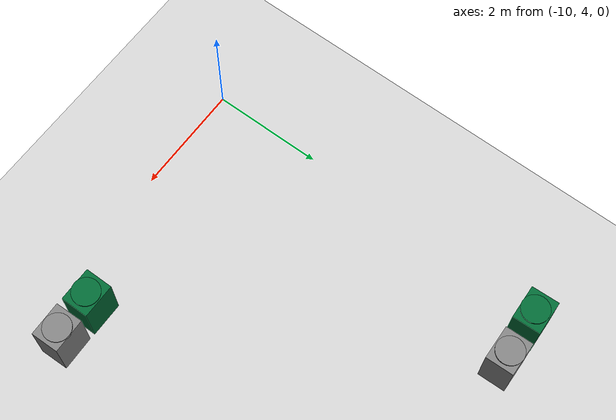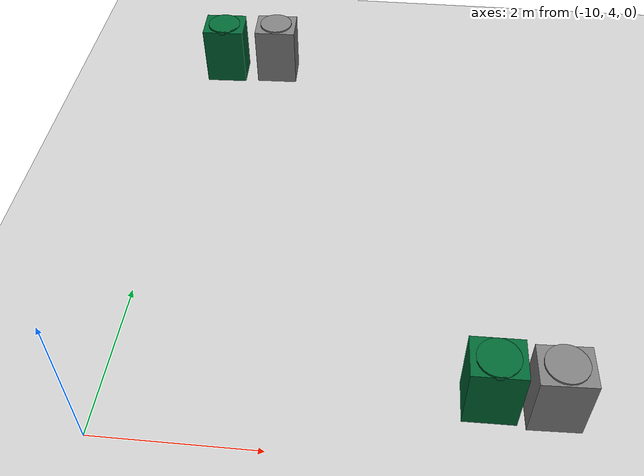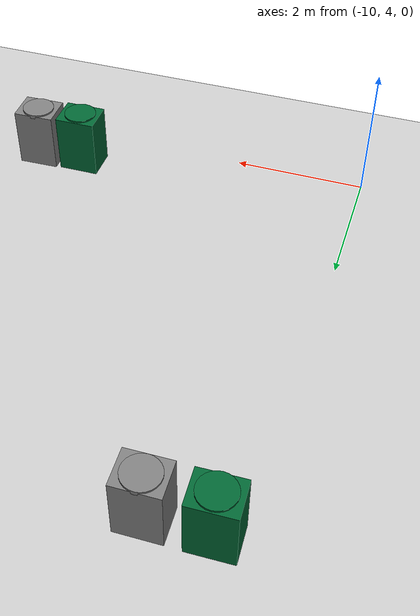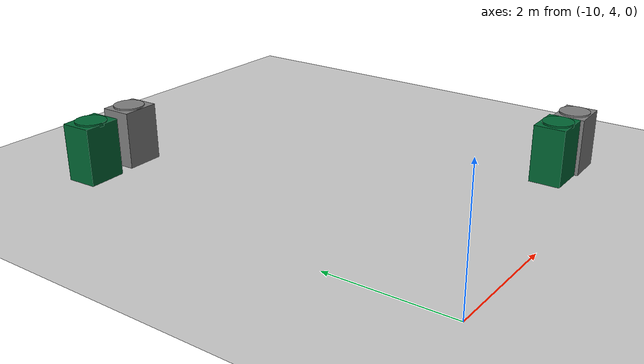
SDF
<sdf version="1.7">
 <world name="default">
  <model name="ground_plane">
   <static>1</static>
   <link name="link">
    <collision name="collision">
     <geometry><plane><normal>0 0 1</normal><size>100 100</size></plane></geometry>
     <surface><friction><ode><mu>100</mu><mu2>50</mu2></ode></friction></surface>
    </collision>
    <visual name="visual">
     <cast_shadows>0</cast_shadows>
     <geometry><plane><normal>0 0 1</normal><size>100 100</size></plane></geometry>
     <material>
      <script><uri>file://media/materials/scripts/gazebo.material</uri><name>Gazebo/Grey</name></script>
     </material>
    </visual>
   </link>
  </model>
  <model name="grey_Bin">
   <static>1</static>
   <link name="link_2">
    <inertial>
     <mass>0.277562</mass>
     <inertia>
      <ixx>0.0278838</ixx>
      <ixy>0</ixy>
      <ixz>0</ixz>
      <iyy>0.0249412</iyy>
      <iyz>0</iyz>
      <izz>0.0143905</izz>
     </inertia>
    </inertial>
    <pose>-0.005587 0.000331 -0.225701 0 -0 0</pose>
    <visual name="visual">
     <geometry><box><size>0.49746 0.612116 0.9115</size></box></geometry>
     <material>
      <ambient>0.5 0.5 0.5 1</ambient>
      <diffuse>0.5 0.5 0.5 1</diffuse>
      <specular>0.2 0.2 0.2 1</specular>
      <lighting>1</lighting>
     </material>
    </visual>
    <collision name="collision"><geometry><box><size>0.49746 0.612116 0.9115</size></box></geometry></collision>
   </link>
   <link name="link_3">
    <inertial>
     <mass>0.0139645</mass>
     <inertia>
      <ixx>0.000210199</ixx>
      <ixy>0</ixy>
      <ixz>0</ixz>
      <iyy>0.000210199</iyy>
      <iyz>0</iyz>
      <izz>0.000412262</izz>
     </inertia>
    </inertial>
    <pose>0.005589 -0.000325 0.225701 0 -0 0</pose>
    <visual name="visual">
     <geometry><cylinder><radius>0.24299</radius><length>0.0591249</length></cylinder></geometry>
     <material>
      <ambient>0.5 0.5 0.5 1</ambient>
      <diffuse>0.5 0.5 0.5 1</diffuse>
      <specular>0.2 0.2 0.2 1</specular>
      <lighting>1</lighting>
     </material>
    </visual>
    <collision name="collision">
     <geometry><cylinder><radius>0.24299</radius><length>0.059125</length></cylinder></geometry>
    </collision>
   </link>
   <static>0</static>
   <pose>-8.81105 10.6558 0.715647 0 -0 1.60163</pose>
  </model>
  <model name="green_Bin">
   <static>1</static>
   <link name="link_2">
    <inertial>
     <mass>0.277562</mass>
     <inertia>
      <ixx>0.0278838</ixx>
      <ixy>0</ixy>
      <ixz>0</ixz>
      <iyy>0.0249412</iyy>
      <iyz>0</iyz>
      <izz>0.0143905</izz>
     </inertia>
    </inertial>
    <pose>-0.005587 0.000331 -0.225701 0 -0 0</pose>
    <visual name="visual">
     <geometry><box><size>0.49746 0.612116 0.9115</size></box></geometry>
     <material>
      <ambient>0 0.4 0.2 1</ambient>
      <diffuse>0 0.4 0.2 1</diffuse>
      <specular>0.1 0.1 0.1 1</specular>
      <lighting>1</lighting>
     </material>
    </visual>
    <collision name="collision"><geometry><box><size>0.49746 0.612116 0.9115</size></box></geometry></collision>
   </link>
   <link name="link_3">
    <inertial>
     <mass>0.0139645</mass>
     <inertia>
      <ixx>0.000210199</ixx>
      <ixy>0</ixy>
      <ixz>0</ixz>
      <iyy>0.000210199</iyy>
      <iyz>0</iyz>
      <izz>0.000412262</izz>
     </inertia>
    </inertial>
    <pose>0.005589 -0.000325 0.225701 0 -0 0</pose>
    <visual name="visual">
     <geometry><cylinder><radius>0.24299</radius><length>0.0591249</length></cylinder></geometry>
     <material>
      <ambient>0 0.4 0.2 1</ambient>
      <diffuse>0 0.4 0.2 1</diffuse>
      <specular>0.1 0.1 0.1 1</specular>
      <lighting>1</lighting>
     </material>
    </visual>
    <collision name="collision">
     <geometry><cylinder><radius>0.24299</radius><length>0.059125</length></cylinder></geometry>
    </collision>
   </link>
   <static>0</static>
   <pose>-9.62578 10.6148 0.697932 0 0 -1.53011</pose>
  </model>
  <model name="green_Bin_0">
   <static>1</static>
   <link name="link_2">
    <inertial>
     <mass>0.277562</mass>
     <inertia>
      <ixx>0.0278838</ixx>
      <ixy>0</ixy>
      <ixz>0</ixz>
      <iyy>0.0249412</iyy>
      <iyz>0</iyz>
      <izz>0.0143905</izz>
     </inertia>
    </inertial>
    <pose>-0.005587 0.000331 -0.225701 0 -0 0</pose>
    <visual name="visual">
     <geometry><box><size>0.49746 0.612116 0.9115</size></box></geometry>
     <material>
      <ambient>0 0.4 0.2 1</ambient>
      <diffuse>0 0.4 0.2 1</diffuse>
      <specular>0.1 0.1 0.1 1</specular>
      <lighting>1</lighting>
     </material>
    </visual>
    <collision name="collision"><geometry><box><size>0.49746 0.612116 0.9115</size></box></geometry></collision>
   </link>
   <link name="link_3">
    <inertial>
     <mass>0.0139645</mass>
     <inertia>
      <ixx>0.000210199</ixx>
      <ixy>0</ixy>
      <ixz>0</ixz>
      <iyy>0.000210199</iyy>
      <iyz>0</iyz>
      <izz>0.000412262</izz>
     </inertia>
    </inertial>
    <pose>0.005589 -0.000325 0.225701 0 -0 0</pose>
    <visual name="visual">
     <geometry><cylinder><radius>0.24299</radius><length>0.0591249</length></cylinder></geometry>
     <material>
      <ambient>0 0.4 0.2 1</ambient>
      <diffuse>0 0.4 0.2 1</diffuse>
      <specular>0.1 0.1 0.1 1</specular>
      <lighting>1</lighting>
     </material>
    </visual>
    <collision name="collision">
     <geometry><cylinder><radius>0.24299</radius><length>0.059125</length></cylinder></geometry>
    </collision>
   </link>
   <static>0</static>
   <pose>-5.60459 4.78789 0.713526 0 0 -1.56052</pose>
  </model>
  <model name="grey_Bin_0">
   <static>1</static>
   <link name="link_2">
    <inertial>
     <mass>0.277562</mass>
     <inertia>
      <ixx>0.0278838</ixx>
      <ixy>0</ixy>
      <ixz>0</ixz>
      <iyy>0.0249412</iyy>
      <iyz>0</iyz>
      <izz>0.0143905</izz>
     </inertia>
    </inertial>
    <pose>-0.005587 0.000331 -0.225701 0 -0 0</pose>
    <visual name="visual">
     <geometry><box><size>0.49746 0.612116 0.9115</size></box></geometry>
     <material>
      <ambient>0.5 0.5 0.5 1</ambient>
      <diffuse>0.5 0.5 0.5 1</diffuse>
      <specular>0.2 0.2 0.2 1</specular>
      <lighting>1</lighting>
     </material>
    </visual>
    <collision name="collision"><geometry><box><size>0.49746 0.612116 0.9115</size></box></geometry></collision>
   </link>
   <link name="link_3">
    <inertial>
     <mass>0.0139645</mass>
     <inertia>
      <ixx>0.000210199</ixx>
      <ixy>0</ixy>
      <ixz>0</ixz>
      <iyy>0.000210199</iyy>
      <iyz>0</iyz>
      <izz>0.000412262</izz>
     </inertia>
    </inertial>
    <pose>0.005589 -0.000325 0.225701 0 -0 0</pose>
    <visual name="visual">
     <geometry><cylinder><radius>0.24299</radius><length>0.0591249</length></cylinder></geometry>
     <material>
      <ambient>0.5 0.5 0.5 1</ambient>
      <diffuse>0.5 0.5 0.5 1</diffuse>
      <specular>0.2 0.2 0.2 1</specular>
      <lighting>1</lighting>
     </material>
    </visual>
    <collision name="collision">
     <geometry><cylinder><radius>0.24299</radius><length>0.059125</length></cylinder></geometry>
    </collision>
   </link>
   <static>0</static>
   <pose>-4.89424 4.78967 0.675191 0 -0 1.60066</pose>
  </model>
 </world>
</sdf>
